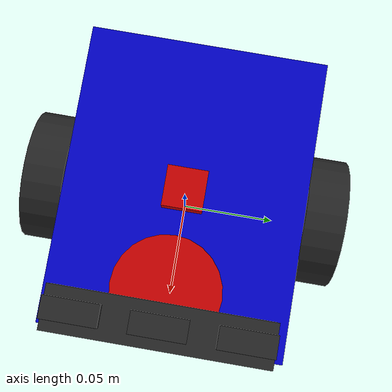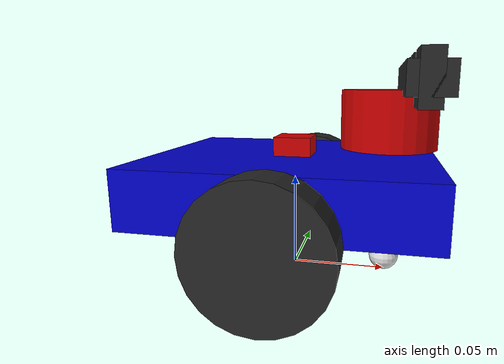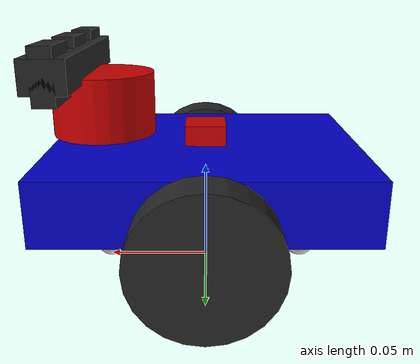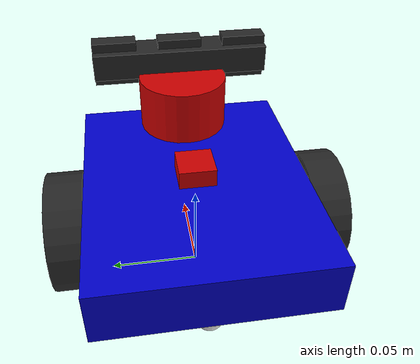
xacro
<?xml version="1.0"?>
<robot xmlns:xacro="http://www.ros.org/wiki/xacro" name="bot">

    <xacro:arg name="is_ignition" default="true"/>

    <xacro:include filename="$(find isaac_ros_amr_navigation)/robot_description/urdf/bot_gazebo.xacro"/>
    <xacro:include filename="$(find isaac_ros_amr_navigation)/robot_description/urdf/amr_controller.xacro"/>

    <material name="blue">
        <color rgba="0 0 0.8 1"/>
    </material>
    <material name="red">
        <color rgba="0.8 0 0 1"/>
    </material>
    <material name="green">
        <color rgba="0 0.8 0 1"/>
    </material>
    <material name="black">
        <color rgba="0.15 0.15 0.15 1"/>
    </material>
    <material name="white">
        <color rgba="0.9 0.9 0.9 1"/>
    </material>

    <link name="base_footprint"/>

    <link name="base_link">
        <visual>
            <origin xyz="0 0 0.015" rpy="0 0 0"/>
            <geometry>
                <box size="0.15 0.12 0.03"/>
            </geometry>
            <material name="blue"/>
        </visual>

        <collision>
            <origin xyz="0 0 0.015" rpy="0 0 0"/>
            <geometry>
                <box size="0.15 0.12 0.03"/>
            </geometry>
        </collision>

        <inertial>
            <origin xyz="0 0 0.015" rpy="0 0 0"/>
            <mass value="2.0"/>
            <inertia ixx="0.0067" ixy="0.0" ixz="0.0"
                     iyy="0.0100" iyz="0.0" izz="0.0150"/>
        </inertial>
    </link>

    <joint name="basejoint" type="fixed">
        <parent link="base_footprint"/>
        <child link="base_link"/>
        <origin xyz="0 0 0.033" rpy="0 0 0"/>
    </joint>

    <link name="right_wheel_link">
        <visual>
            <origin xyz="0 0 0" rpy="1.5707963 0 0"/>
            <geometry>
                <cylinder radius="0.033" length="0.02"/>
            </geometry>
            <material name="black"/>
        </visual>

        <collision>
            <origin xyz="0 0 0" rpy="1.5707963 0 0"/>
            <geometry>
                <cylinder radius="0.033" length="0.02"/>
            </geometry>
        </collision>

        <inertial>
            <origin xyz="0 0 0" rpy="0 0 0"/>
            <mass value="0.2"/>
            <inertia ixx="0.000139" ixy="0.0" ixz="0.0"
                     iyy="0.000139" iyz="0.0" izz="0.000217"/>
        </inertial>
    </link>

    <joint name="right_wheel_joint" type="continuous">
        <parent link="base_link"/>
        <child link="right_wheel_link"/>
        <origin xyz="0 -0.07 0" rpy="0 0 0"/>
        <axis xyz="0 1 0"/>
    </joint>

    <link name="left_wheel_link">
        <visual>
            <origin xyz="0 0 0" rpy="-1.5707963 0 0"/>
            <geometry>
                <cylinder radius="0.033" length="0.02"/>
            </geometry>
            <material name="black"/>
        </visual>

        <collision>
            <origin xyz="0 0 0" rpy="-1.5707963 0 0"/>
            <geometry>
                <cylinder radius="0.033" length="0.02"/>
            </geometry>
        </collision>

        <inertial>
            <origin xyz="0 0 0" rpy="0 0 0"/>
            <mass value="0.2"/>
            <inertia ixx="0.000139" ixy="0.0" ixz="0.0"
                     iyy="0.000139" iyz="0.0" izz="0.000217"/>
        </inertial>
    </link>

    <joint name="left_wheel_joint" type="continuous">
        <parent link="base_link"/>
        <child link="left_wheel_link"/>
        <origin xyz="0 0.07 0" rpy="0 0 0"/>
        <axis xyz="0 1 0"/>
    </joint>

    <link name="caster_front_link">
        <visual>
            <origin xyz="0 0 0" rpy="0 0 0"/>
            <geometry>
                <sphere radius="0.008"/>
            </geometry>
            <material name="white"/>
        </visual>

        <collision>
            <origin xyz="0 0 0" rpy="0 0 0"/>
            <geometry>
                <sphere radius="0.008"/>
            </geometry>
        </collision>

        <inertial>
            <origin xyz="0 0 0" rpy="0 0 0"/>
            <mass value="0.2"/>
            <inertia ixx="0.001" ixy="0.0" ixz="0.0"
                     iyy="0.001" iyz="0.0" izz="0.001"/>
        </inertial>
    </link>

    <joint name="caster_front_joint" type="fixed">
        <parent link="base_link"/>
        <child link="caster_front_link"/>
        <origin xyz="0.05 0 -0.025" rpy="0 0 0"/>
    </joint>

    <link name="caster_rear_link">
        <visual>
            <origin xyz="0 0 0" rpy="0 0 0"/>
            <geometry>
                <sphere radius="0.008"/>
            </geometry>
            <material name="white"/>
        </visual>

        <collision>
            <origin xyz="0 0 0" rpy="0 0 0"/>
            <geometry>
                <sphere radius="0.008"/>
            </geometry>
        </collision>

        <inertial>
            <origin xyz="0 0 0" rpy="0 0 0"/>
            <mass value="0.2"/>
            <inertia ixx="0.001" ixy="0.0" ixz="0.0"
                     iyy="0.001" iyz="0.0" izz="0.001"/>
        </inertial>
    </link>

    <joint name="caster_rear_joint" type="fixed">
        <parent link="base_link"/>
        <child link="caster_rear_link"/>
        <origin xyz="-0.05 0 -0.025" rpy="0 0 0"/>
    </joint>

    <link name="imu_link">
        <visual>
            <origin xyz="0 0 0" rpy="0 0 0"/>
            <geometry>
                <box size="0.02 0.02 0.01"/>
            </geometry>
            <material name="red"/>
        </visual>

        <collision>
            <origin xyz="0 0 0" rpy="0 0 0"/>
            <geometry>
                <box size="0.02 0.02 0.01"/>
            </geometry>
        </collision>

        <inertial>
            <origin xyz="0 0 0" rpy="0 0 0"/>
            <mass value="0.02"/>
            <inertia ixx="0.001" ixy="0.0" ixz="0.0"
                     iyy="0.001" iyz="0.0" izz="0.001"/>
        </inertial>
    </link>

    <joint name="imu_joint" type="fixed">
        <parent link="base_link"/>
        <child link="imu_link"/>
        <origin xyz="0 0 0.035" rpy="0 0 0"/>
    </joint>

    <link name="laser_link">
        <visual>
            <origin xyz="0 0 0" rpy="0 0 0"/>
            <geometry>
                <cylinder radius="0.025" length="0.03"/>
            </geometry>
            <material name="red"/>
        </visual>

        <collision>
            <origin xyz="0 0 0" rpy="0 0 0"/>
            <geometry>
                <cylinder radius="0.025" length="0.03"/>
            </geometry>
        </collision>

        <inertial>
            <origin xyz="0 0 0" rpy="0 0 0"/>
            <mass value="0.2"/>
            <inertia ixx="0.001" ixy="0.0" ixz="0.0"
                     iyy="0.001" iyz="0.0" izz="0.001"/>
        </inertial>
    </link>

    <joint name="laser_joint" type="fixed">
        <parent link="base_link"/>
        <child link="laser_link"/>
        <origin xyz="0.05 0 0.05" rpy="0 0 0"/>
    </joint>

    <link name="camera_mount_link">
        <visual>
            <origin xyz="0 0 0" rpy="0 0 0"/>
            <geometry>
                <box size="0.02 0.10 0.015"/>
            </geometry>
            <material name="black"/>
        </visual>

        <collision>
            <origin xyz="0 0 0" rpy="0 0 0"/>
            <geometry>
                <box size="0.02 0.10 0.015"/>
            </geometry>
        </collision>

        <inertial>
            <origin xyz="0 0 0" rpy="0 0 0"/>
            <mass value="0.05"/>
            <inertia ixx="0.001" ixy="0.0" ixz="0.0"
                     iyy="0.001" iyz="0.0" izz="0.001"/>
        </inertial>
    </link>

    <joint name="camera_mount_joint" type="fixed">
        <parent link="base_link"/>
        <child link="camera_mount_link"/>
        <origin xyz="0.065 0 0.07" rpy="0 0 0"/>
    </joint>

    <link name="camera_left_link">
        <visual>
            <origin xyz="0 0 0" rpy="0 0 0"/>
            <geometry>
                <box size="0.01 0.025 0.025"/>
            </geometry>
            <material name="black"/>
        </visual>

        <collision>
            <origin xyz="0 0 0" rpy="0 0 0"/>
            <geometry>
                <box size="0.01 0.025 0.025"/>
            </geometry>
        </collision>

        <inertial>
            <origin xyz="0 0 0" rpy="0 0 0"/>
            <mass value="0.2"/>
            <inertia ixx="0.001" ixy="0.0" ixz="0.0"
                     iyy="0.001" iyz="0.0" izz="0.001"/>
        </inertial>
    </link>

    <joint name="camera_left_joint" type="fixed">
        <parent link="camera_mount_link"/>
        <child link="camera_left_link"/>
        <origin xyz="0 0.0375 0" rpy="0 0 0"/>
    </joint>

    <link name="camera_left_optical_frame"/>
    <joint name="camera_left_optical_joint" type="fixed">
        <parent link="camera_left_link"/>
        <child link="camera_left_optical_frame"/>
        <origin xyz="0 0 0" rpy="-1.5707963 0 -1.5707963"/>
    </joint>

    <link name="camera_right_link">
        <visual>
            <origin xyz="0 0 0" rpy="0 0 0"/>
            <geometry>
                <box size="0.01 0.025 0.025"/>
            </geometry>
            <material name="black"/>
        </visual>

        <collision>
            <origin xyz="0 0 0" rpy="0 0 0"/>
            <geometry>
                <box size="0.01 0.025 0.025"/>
            </geometry>
        </collision>

        <inertial>
            <origin xyz="0 0 0" rpy="0 0 0"/>
            <mass value="0.2"/>
            <inertia ixx="0.001" ixy="0.0" ixz="0.0"
                     iyy="0.001" iyz="0.0" izz="0.001"/>
        </inertial>
    </link>

    <joint name="camera_right_joint" type="fixed">
        <parent link="camera_mount_link"/>
        <child link="camera_right_link"/>
        <origin xyz="0 -0.0375 0" rpy="0 0 0"/>
    </joint>

    <link name="camera_right_optical_frame"/>
    <joint name="camera_right_optical_joint" type="fixed">
        <parent link="camera_right_link"/>
        <child link="camera_right_optical_frame"/>
        <origin xyz="0 0 0" rpy="-1.5707963 0 -1.5707963"/>
    </joint>

    <link name="camera_center_link">
        <visual>
            <origin xyz="0 0 0" rpy="0 0 0"/>
            <geometry>
                <box size="0.01 0.025 0.025"/>
            </geometry>
            <material name="black"/>
        </visual>

        <collision>
            <origin xyz="0 0 0" rpy="0 0 0"/>
            <geometry>
                <box size="0.01 0.025 0.025"/>
            </geometry>
        </collision>

        <inertial>
            <origin xyz="0 0 0" rpy="0 0 0"/>
            <mass value="0.2"/>
            <inertia ixx="0.001" ixy="0.0" ixz="0.0"
                     iyy="0.001" iyz="0.0" izz="0.001"/>
        </inertial>
    </link>

    <joint name="camera_center_joint" type="fixed">
        <parent link="camera_mount_link"/>
        <child link="camera_center_link"/>
        <origin xyz="0 0 0" rpy="0 0 0"/>
    </joint>

    <link name="camera_center_optical_frame"/>
    <joint name="camera_center_optical_joint" type="fixed">
        <parent link="camera_center_link"/>
        <child link="camera_center_optical_frame"/>
        <origin xyz="0 0 0" rpy="-1.5707963 0 -1.5707963"/>
    </joint>

</robot>
